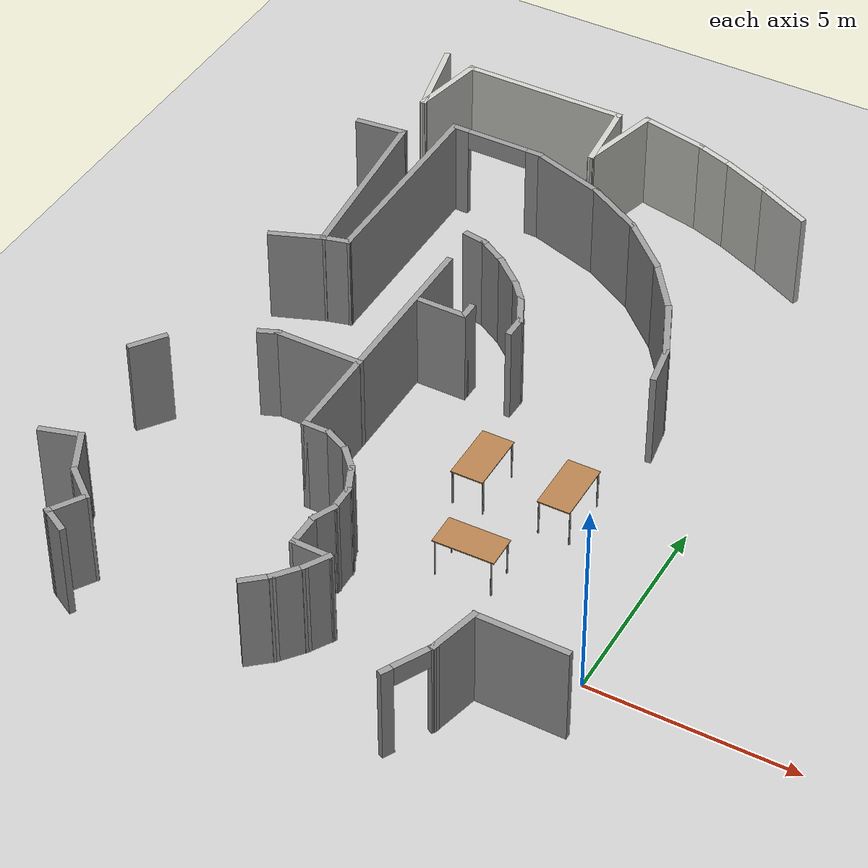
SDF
<sdf version="1.7">
 <world name="default">
  <model name="ground_plane">
   <static>1</static>
   <link name="link">
    <collision name="collision">
     <geometry><plane><normal>0 0 1</normal><size>100 100</size></plane></geometry>
     <surface>
      <contact><collide_bitmask>65535</collide_bitmask></contact>
      <friction><ode><mu>100</mu><mu2>50</mu2></ode></friction>
     </surface>
    </collision>
    <visual name="visual">
     <cast_shadows>0</cast_shadows>
     <geometry><plane><normal>0 0 1</normal><size>100 100</size></plane></geometry>
     <material>
      <script><uri>file://media/materials/scripts/gazebo.material</uri><name>Gazebo/Grey</name></script>
     </material>
    </visual>
   </link>
  </model>
  <model name="model">
   <pose>-4.1341 -0.05921 0 0 -0 0</pose>
   <link name="Wall_108">
    <collision name="Wall_108_Collision">
     <geometry><box><size>2.19881 0.15 2.5</size></box></geometry>
     <pose>0 0 1.25 0 -0 0</pose>
    </collision>
    <visual name="Wall_108_Visual">
     <pose>0 0 1.25 0 -0 0</pose>
     <geometry><box><size>2.19881 0.15 2.5</size></box></geometry>
     <material>
      <script><uri>file://media/materials/scripts/gazebo.material</uri><name>Gazebo/CeilingTiled</name></script>
      <ambient>0.964706 1 0.972549 1</ambient>
     </material>
     <meta><layer>0</layer></meta>
    </visual>
    <pose>-7.32602 14.2769 0 0 -0 -1.34372</pose>
   </link>
   <link name="Wall_109">
    <collision name="Wall_109_Collision">
     <geometry><box><size>1.99778 0.15 2.5</size></box></geometry>
     <pose>0 0 1.25 0 -0 0</pose>
    </collision>
    <visual name="Wall_109_Visual">
     <pose>0 0 1.25 0 -0 0</pose>
     <geometry><box><size>1.99778 0.15 2.5</size></box></geometry>
     <material>
      <script><uri>file://media/materials/scripts/gazebo.material</uri><name>Gazebo/CeilingTiled</name></script>
      <ambient>0.964706 1 0.972549 1</ambient>
     </material>
     <meta><layer>0</layer></meta>
    </visual>
    <pose>-6.92148 14.1861 0 0 -0 1.38143</pose>
   </link>
   <link name="Wall_111">
    <collision name="Wall_111_Collision">
     <geometry><box><size>4.25 0.15 2.5</size></box></geometry>
     <pose>0 0 1.25 0 -0 0</pose>
    </collision>
    <visual name="Wall_111_Visual">
     <pose>0 0 1.25 0 -0 0</pose>
     <geometry><box><size>4.25 0.15 2.5</size></box></geometry>
     <material>
      <script><uri>file://media/materials/scripts/gazebo.material</uri><name>Gazebo/CeilingTiled</name></script>
      <ambient>0.964706 1 0.972549 1</ambient>
     </material>
     <meta><layer>0</layer></meta>
    </visual>
    <pose>-4.69757 15.0935 0 0 -0 0</pose>
   </link>
   <link name="Wall_112">
    <collision name="Wall_112_Collision">
     <geometry><box><size>1.93197 0.15 2.5</size></box></geometry>
     <pose>0 0 1.25 0 -0 0</pose>
    </collision>
    <visual name="Wall_112_Visual">
     <pose>0 0 1.25 0 -0 0</pose>
     <geometry><box><size>1.93197 0.15 2.5</size></box></geometry>
     <material>
      <script><uri>file://media/materials/scripts/gazebo.material</uri><name>Gazebo/CeilingTiled</name></script>
      <ambient>0.964706 1 0.972549 1</ambient>
     </material>
     <meta><layer>0</layer></meta>
    </visual>
    <pose>-2.56312 14.2065 0 0 -0 -1.47587</pose>
   </link>
   <link name="Wall_113">
    <collision name="Wall_113_Collision">
     <geometry><box><size>2.16942 0.15 2.5</size></box></geometry>
     <pose>0 0 1.25 0 -0 0</pose>
    </collision>
    <visual name="Wall_113_Visual">
     <pose>0 0 1.25 0 -0 0</pose>
     <geometry><box><size>2.16942 0.15 2.5</size></box></geometry>
     <material>
      <script><uri>file://media/materials/scripts/gazebo.material</uri><name>Gazebo/CeilingTiled</name></script>
      <ambient>0.964706 1 0.972549 1</ambient>
     </material>
     <meta><layer>0</layer></meta>
    </visual>
    <pose>-2.22567 14.2971 0 0 -0 1.31753</pose>
   </link>
   <link name="Wall_119">
    <collision name="Wall_119_Collision">
     <geometry><box><size>1.52296 0.15 2.5</size></box></geometry>
     <pose>0 0 1.25 0 -0 0</pose>
    </collision>
    <visual name="Wall_119_Visual">
     <pose>0 0 1.25 0 -0 0</pose>
     <geometry><box><size>1.52296 0.15 2.5</size></box></geometry>
     <material>
      <script><uri>file://media/materials/scripts/gazebo.material</uri><name>Gazebo/CeilingTiled</name></script>
      <ambient>0.964706 1 0.972549 1</ambient>
     </material>
     <meta><layer>0</layer></meta>
    </visual>
    <pose>2.30059 13.8514 0 0 -0 2.68533</pose>
   </link>
   <link name="Wall_120">
    <collision name="Wall_120_Collision">
     <geometry><box><size>1.38613 0.15 2.5</size></box></geometry>
     <pose>0 0 1.25 0 -0 0</pose>
    </collision>
    <visual name="Wall_120_Visual">
     <pose>0 0 1.25 0 -0 0</pose>
     <geometry><box><size>1.38613 0.15 2.5</size></box></geometry>
     <material>
      <script><uri>file://media/materials/scripts/gazebo.material</uri><name>Gazebo/CeilingTiled</name></script>
      <ambient>0.964706 1 0.972549 1</ambient>
     </material>
     <meta><layer>0</layer></meta>
    </visual>
    <pose>1.11722 14.3996 0 0 -0 2.73269</pose>
   </link>
   <link name="Wall_121">
    <collision name="Wall_121_Collision">
     <geometry><box><size>1.10172 0.15 2.5</size></box></geometry>
     <pose>0 0 1.25 0 -0 0</pose>
    </collision>
    <visual name="Wall_121_Visual">
     <pose>0 0 1.25 0 -0 0</pose>
     <geometry><box><size>1.10172 0.15 2.5</size></box></geometry>
     <material>
      <script><uri>file://media/materials/scripts/gazebo.material</uri><name>Gazebo/CeilingTiled</name></script>
      <ambient>0.964706 1 0.972549 1</ambient>
     </material>
     <meta><layer>0</layer></meta>
    </visual>
    <pose>0.100208 14.8003 0 0 -0 2.80979</pose>
   </link>
   <link name="Wall_122">
    <collision name="Wall_122_Collision">
     <geometry><box><size>1.79614 0.15 2.5</size></box></geometry>
     <pose>0 0 1.25 0 -0 0</pose>
    </collision>
    <visual name="Wall_122_Visual">
     <pose>0 0 1.25 0 -0 0</pose>
     <geometry><box><size>1.79614 0.15 2.5</size></box></geometry>
     <material>
      <script><uri>file://media/materials/scripts/gazebo.material</uri><name>Gazebo/CeilingTiled</name></script>
      <ambient>0.964706 1 0.972549 1</ambient>
     </material>
     <meta><layer>0</layer></meta>
    </visual>
    <pose>-1.15499 15.1255 0 0 -0 2.93339</pose>
   </link>
   <link name="Wall_182">
    <collision name="Wall_182_Collision">
     <geometry><box><size>1.35009 0.15 2.5</size></box></geometry>
     <pose>0 0 1.25 0 -0 0</pose>
    </collision>
    <visual name="Wall_182_Visual">
     <pose>0 0 1.25 0 -0 0</pose>
     <geometry><box><size>1.35009 0.15 2.5</size></box></geometry>
     <material>
      <script><uri>file://media/materials/scripts/gazebo.material</uri><name>Gazebo/Grey</name></script>
      <ambient>1 1 1 1</ambient>
     </material>
     <meta><layer>0</layer></meta>
    </visual>
    <pose>2.18096 -1.91168 0 0 -0 -1.80764</pose>
   </link>
   <link name="Wall_183">
    <pose>1.75857 -3.03804 0 0 -0 -2.04915</pose>
    <visual name="Wall_183_Visual_0">
     <pose>-0.599077 0 1.25 0 -0 0</pose>
     <geometry><box><size>0.175306 0.15 2.5</size></box></geometry>
     <material>
      <script><uri>file://media/materials/scripts/gazebo.material</uri><name>Gazebo/Grey</name></script>
      <ambient>1 1 1 1</ambient>
     </material>
     <meta><layer>0</layer></meta>
    </visual>
    <collision name="Wall_183_Collision_0">
     <geometry><box><size>0.175306 0.15 2.5</size></box></geometry>
     <pose>-0.599077 0 1.25 0 -0 0</pose>
    </collision>
    <visual name="Wall_183_Visual_1">
     <pose>0.537653 0 1.25 0 -0 0</pose>
     <geometry><box><size>0.298155 0.15 2.5</size></box></geometry>
     <material>
      <script><uri>file://media/materials/scripts/gazebo.material</uri><name>Gazebo/Grey</name></script>
      <ambient>1 1 1 1</ambient>
     </material>
     <meta><layer>0</layer></meta>
    </visual>
    <collision name="Wall_183_Collision_1">
     <geometry><box><size>0.298155 0.15 2.5</size></box></geometry>
     <pose>0.537653 0 1.25 0 -0 0</pose>
    </collision>
    <visual name="Wall_183_Visual_2">
     <pose>-0.061425 0 2.25 0 -0 0</pose>
     <geometry><box><size>0.9 0.15 0.5</size></box></geometry>
     <material>
      <script><uri>file://media/materials/scripts/gazebo.material</uri><name>Gazebo/Grey</name></script>
      <ambient>1 1 1 1</ambient>
     </material>
     <meta><layer>0</layer></meta>
    </visual>
    <collision name="Wall_183_Collision_2">
     <geometry><box><size>0.9 0.15 0.5</size></box></geometry>
     <pose>-0.061425 0 2.25 0 -0 0</pose>
    </collision>
   </link>
   <link name="Wall_206">
    <collision name="Wall_206_Collision">
     <geometry><box><size>2.27583 0.15 2.5</size></box></geometry>
     <pose>0 0 1.25 0 -0 0</pose>
    </collision>
    <visual name="Wall_206_Visual">
     <pose>0 0 1.25 0 -0 0</pose>
     <geometry><box><size>2.27583 0.15 2.5</size></box></geometry>
     <material>
      <script><uri>file://media/materials/scripts/gazebo.material</uri><name>Gazebo/Grey</name></script>
      <ambient>1 1 1 1</ambient>
     </material>
     <meta><layer>0</layer></meta>
    </visual>
    <pose>3.38467 -1.33441 0 0 -0 -0.005672</pose>
   </link>
   <link name="Wall_269">
    <collision name="Wall_269_Collision">
     <geometry><box><size>1.31082 0.15 2.5</size></box></geometry>
     <pose>0 0 1.25 0 -0 0</pose>
    </collision>
    <visual name="Wall_269_Visual">
     <pose>0 0 1.25 0 -0 0</pose>
     <geometry><box><size>1.31082 0.15 2.5</size></box></geometry>
     <material>
      <script><uri>file://media/materials/scripts/gazebo.material</uri><name>Gazebo/Grey</name></script>
      <ambient>1 1 1 1</ambient>
     </material>
     <meta><layer>0</layer></meta>
    </visual>
    <pose>-7.5038 11.8897 0 0 -0 0.105666</pose>
   </link>
   <link name="Wall_270">
    <collision name="Wall_270_Collision">
     <geometry><box><size>4.61065 0.15 2.5</size></box></geometry>
     <pose>0 0 1.25 0 -0 0</pose>
    </collision>
    <visual name="Wall_270_Visual">
     <pose>0 0 1.25 0 -0 0</pose>
     <geometry><box><size>4.61065 0.15 2.5</size></box></geometry>
     <material>
      <script><uri>file://media/materials/scripts/gazebo.material</uri><name>Gazebo/Grey</name></script>
      <ambient>1 1 1 1</ambient>
     </material>
     <meta><layer>0</layer></meta>
    </visual>
    <pose>-6.7255 9.72973 0 0 -0 -1.48049</pose>
   </link>
   <link name="Wall_271">
    <collision name="Wall_271_Collision">
     <geometry><box><size>1.39068 0.15 2.5</size></box></geometry>
     <pose>0 0 1.25 0 -0 0</pose>
    </collision>
    <visual name="Wall_271_Visual">
     <pose>0 0 1.25 0 -0 0</pose>
     <geometry><box><size>1.39068 0.15 2.5</size></box></geometry>
     <material>
      <script><uri>file://media/materials/scripts/gazebo.material</uri><name>Gazebo/Grey</name></script>
      <ambient>1 1 1 1</ambient>
     </material>
     <meta><layer>0</layer></meta>
    </visual>
    <pose>-7.10153 7.28112 0 0 -0 -2.76632</pose>
   </link>
   <link name="Wall_273">
    <collision name="Wall_273_Collision">
     <geometry><box><size>0.75 0.15 2.5</size></box></geometry>
     <pose>0 0 1.25 0 -0 0</pose>
    </collision>
    <visual name="Wall_273_Visual">
     <pose>0 0 1.25 0 -0 0</pose>
     <geometry><box><size>0.75 0.15 2.5</size></box></geometry>
     <material>
      <script><uri>file://media/materials/scripts/gazebo.material</uri><name>Gazebo/Grey</name></script>
      <ambient>1 1 1 1</ambient>
     </material>
     <meta><layer>0</layer></meta>
    </visual>
    <pose>-6.23458 7.58613 0 0 -0 0.261799</pose>
   </link>
   <link name="Wall_275">
    <collision name="Wall_275_Collision">
     <geometry><box><size>5.25 0.15 2.5</size></box></geometry>
     <pose>0 0 1.25 0 -0 0</pose>
    </collision>
    <visual name="Wall_275_Visual">
     <pose>0 0 1.25 0 -0 0</pose>
     <geometry><box><size>5.25 0.15 2.5</size></box></geometry>
     <material>
      <script><uri>file://media/materials/scripts/gazebo.material</uri><name>Gazebo/Grey</name></script>
      <ambient>1 1 1 1</ambient>
     </material>
     <meta><layer>0</layer></meta>
    </visual>
    <pose>-5.9448 10.2138 0 0 -0 1.5708</pose>
   </link>
   <link name="Wall_276">
    <pose>-4.7698 12.7638 0 0 -0 0</pose>
    <visual name="Wall_276_Visual_0">
     <pose>-1.00458 0 1.25 0 -0 0</pose>
     <geometry><box><size>0.490836 0.15 2.5</size></box></geometry>
     <material>
      <script><uri>file://media/materials/scripts/gazebo.material</uri><name>Gazebo/Grey</name></script>
      <ambient>1 1 1 1</ambient>
     </material>
     <meta><layer>0</layer></meta>
    </visual>
    <collision name="Wall_276_Collision_0">
     <geometry><box><size>0.490836 0.15 2.5</size></box></geometry>
     <pose>-1.00458 0 1.25 0 -0 0</pose>
    </collision>
    <visual name="Wall_276_Visual_1">
     <pose>1.03647 0 1.25 0 -0 0</pose>
     <geometry><box><size>0.427052 0.15 2.5</size></box></geometry>
     <material>
      <script><uri>file://media/materials/scripts/gazebo.material</uri><name>Gazebo/Grey</name></script>
      <ambient>1 1 1 1</ambient>
     </material>
     <meta><layer>0</layer></meta>
    </visual>
    <collision name="Wall_276_Collision_1">
     <geometry><box><size>0.427052 0.15 2.5</size></box></geometry>
     <pose>1.03647 0 1.25 0 -0 0</pose>
    </collision>
    <visual name="Wall_276_Visual_2">
     <pose>0.031892 0 2.25 0 -0 0</pose>
     <geometry><box><size>1.58211 0.15 0.5</size></box></geometry>
     <material>
      <script><uri>file://media/materials/scripts/gazebo.material</uri><name>Gazebo/Grey</name></script>
      <ambient>1 1 1 1</ambient>
     </material>
     <meta><layer>0</layer></meta>
    </visual>
    <collision name="Wall_276_Collision_2">
     <geometry><box><size>1.58211 0.15 0.5</size></box></geometry>
     <pose>0.031892 0 2.25 0 -0 0</pose>
    </collision>
   </link>
   <link name="Wall_277">
    <collision name="Wall_277_Collision">
     <geometry><box><size>2.04723 0.15 2.5</size></box></geometry>
     <pose>0 0 1.25 0 -0 0</pose>
    </collision>
    <visual name="Wall_277_Visual">
     <pose>0 0 1.25 0 -0 0</pose>
     <geometry><box><size>2.04723 0.15 2.5</size></box></geometry>
     <material>
      <script><uri>file://media/materials/scripts/gazebo.material</uri><name>Gazebo/Grey</name></script>
      <ambient>1 1 1 1</ambient>
     </material>
     <meta><layer>0</layer></meta>
    </visual>
    <pose>-2.69124 12.4749 0 0 -0 -0.30942</pose>
   </link>
   <link name="Wall_278">
    <collision name="Wall_278_Collision">
     <geometry><box><size>1.68932 0.15 2.5</size></box></geometry>
     <pose>0 0 1.25 0 -0 0</pose>
    </collision>
    <visual name="Wall_278_Visual">
     <pose>0 0 1.25 0 -0 0</pose>
     <geometry><box><size>1.68932 0.15 2.5</size></box></geometry>
     <material>
      <script><uri>file://media/materials/scripts/gazebo.material</uri><name>Gazebo/Grey</name></script>
      <ambient>1 1 1 1</ambient>
     </material>
     <meta><layer>0</layer></meta>
    </visual>
    <pose>-1.11848 11.8058 0 0 -0 -0.516695</pose>
   </link>
   <link name="Wall_279">
    <collision name="Wall_279_Collision">
     <geometry><box><size>1.69995 0.15 2.5</size></box></geometry>
     <pose>0 0 1.25 0 -0 0</pose>
    </collision>
    <visual name="Wall_279_Visual">
     <pose>0 0 1.25 0 -0 0</pose>
     <geometry><box><size>1.69995 0.15 2.5</size></box></geometry>
     <material>
      <script><uri>file://media/materials/scripts/gazebo.material</uri><name>Gazebo/Grey</name></script>
      <ambient>1 1 1 1</ambient>
     </material>
     <meta><layer>0</layer></meta>
    </visual>
    <pose>0.121028 10.9009 0 0 -0 -0.743756</pose>
   </link>
   <link name="Wall_280">
    <collision name="Wall_280_Collision">
     <geometry><box><size>1.67406 0.15 2.5</size></box></geometry>
     <pose>0 0 1.25 0 -0 0</pose>
    </collision>
    <visual name="Wall_280_Visual">
     <pose>0 0 1.25 0 -0 0</pose>
     <geometry><box><size>1.67406 0.15 2.5</size></box></geometry>
     <material>
      <script><uri>file://media/materials/scripts/gazebo.material</uri><name>Gazebo/Grey</name></script>
      <ambient>1 1 1 1</ambient>
     </material>
     <meta><layer>0</layer></meta>
    </visual>
    <pose>1.14001 9.76027 0 0 -0 -0.941266</pose>
   </link>
   <link name="Wall_281">
    <collision name="Wall_281_Collision">
     <geometry><box><size>1.6618 0.15 2.5</size></box></geometry>
     <pose>0 0 1.25 0 -0 0</pose>
    </collision>
    <visual name="Wall_281_Visual">
     <pose>0 0 1.25 0 -0 0</pose>
     <geometry><box><size>1.6618 0.15 2.5</size></box></geometry>
     <material>
      <script><uri>file://media/materials/scripts/gazebo.material</uri><name>Gazebo/Grey</name></script>
      <ambient>1 1 1 1</ambient>
     </material>
     <meta><layer>0</layer></meta>
    </visual>
    <pose>1.89285 8.45231 0 0 -0 -1.15666</pose>
   </link>
   <link name="Wall_282">
    <collision name="Wall_282_Collision">
     <geometry><box><size>1.07511 0.15 2.5</size></box></geometry>
     <pose>0 0 1.25 0 -0 0</pose>
    </collision>
    <visual name="Wall_282_Visual">
     <pose>0 0 1.25 0 -0 0</pose>
     <geometry><box><size>1.07511 0.15 2.5</size></box></geometry>
     <material>
      <script><uri>file://media/materials/scripts/gazebo.material</uri><name>Gazebo/Grey</name></script>
      <ambient>1 1 1 1</ambient>
     </material>
     <meta><layer>0</layer></meta>
    </visual>
    <pose>2.27307 7.30405 0 0 -0 -1.40565</pose>
   </link>
   <link name="Wall_288">
    <collision name="Wall_288_Collision">
     <geometry><box><size>0.6604 0.15 2.5</size></box></geometry>
     <pose>0 0 1.25 0 -0 0</pose>
    </collision>
    <visual name="Wall_288_Visual">
     <pose>0 0 1.25 0 -0 0</pose>
     <geometry><box><size>0.6604 0.15 2.5</size></box></geometry>
     <material>
      <script><uri>file://media/materials/scripts/gazebo.material</uri><name>Gazebo/Grey</name></script>
      <ambient>1 1 1 1</ambient>
     </material>
     <meta><layer>0</layer></meta>
    </visual>
    <pose>-3.42046 9.22796 0 0 -0 -0.168832</pose>
   </link>
   <link name="Wall_289">
    <collision name="Wall_289_Collision">
     <geometry><box><size>0.913863 0.15 2.5</size></box></geometry>
     <pose>0 0 1.25 0 -0 0</pose>
    </collision>
    <visual name="Wall_289_Visual">
     <pose>0 0 1.25 0 -0 0</pose>
     <geometry><box><size>0.913863 0.15 2.5</size></box></geometry>
     <material>
      <script><uri>file://media/materials/scripts/gazebo.material</uri><name>Gazebo/Grey</name></script>
      <ambient>1 1 1 1</ambient>
     </material>
     <meta><layer>0</layer></meta>
    </visual>
    <pose>-2.84013 8.99069 0 0 -0 -0.534001</pose>
   </link>
   <link name="Wall_290">
    <collision name="Wall_290_Collision">
     <geometry><box><size>1.03435 0.15 2.5</size></box></geometry>
     <pose>0 0 1.25 0 -0 0</pose>
    </collision>
    <visual name="Wall_290_Visual">
     <pose>0 0 1.25 0 -0 0</pose>
     <geometry><box><size>1.03435 0.15 2.5</size></box></geometry>
     <material>
      <script><uri>file://media/materials/scripts/gazebo.material</uri><name>Gazebo/Grey</name></script>
      <ambient>1 1 1 1</ambient>
     </material>
     <meta><layer>0</layer></meta>
    </visual>
    <pose>-2.17403 8.51041 0 0 -0 -0.703016</pose>
   </link>
   <link name="Wall_291">
    <collision name="Wall_291_Collision">
     <geometry><box><size>0.701971 0.15 2.5</size></box></geometry>
     <pose>0 0 1.25 0 -0 0</pose>
    </collision>
    <visual name="Wall_291_Visual">
     <pose>0 0 1.25 0 -0 0</pose>
     <geometry><box><size>0.701971 0.15 2.5</size></box></geometry>
     <material>
      <script><uri>file://media/materials/scripts/gazebo.material</uri><name>Gazebo/Grey</name></script>
      <ambient>1 1 1 1</ambient>
     </material>
     <meta><layer>0</layer></meta>
    </visual>
    <pose>-1.65946 8.01299 0 0 -0 -0.873406</pose>
   </link>
   <link name="Wall_292">
    <collision name="Wall_292_Collision">
     <geometry><box><size>0.911978 0.15 2.5</size></box></geometry>
     <pose>0 0 1.25 0 -0 0</pose>
    </collision>
    <visual name="Wall_292_Visual">
     <pose>0 0 1.25 0 -0 0</pose>
     <geometry><box><size>0.911978 0.15 2.5</size></box></geometry>
     <material>
      <script><uri>file://media/materials/scripts/gazebo.material</uri><name>Gazebo/Grey</name></script>
      <ambient>1 1 1 1</ambient>
     </material>
     <meta><layer>0</layer></meta>
    </visual>
    <pose>-1.31069 7.46125 0 0 -0 -1.10379</pose>
   </link>
   <link name="Wall_294">
    <collision name="Wall_294_Collision">
     <geometry><box><size>0.620114 0.15 2.5</size></box></geometry>
     <pose>0 0 1.25 0 -0 0</pose>
    </collision>
    <visual name="Wall_294_Visual">
     <pose>0 0 1.25 0 -0 0</pose>
     <geometry><box><size>0.620114 0.15 2.5</size></box></geometry>
     <material>
      <script><uri>file://media/materials/scripts/gazebo.material</uri><name>Gazebo/Grey</name></script>
      <ambient>1 1 1 1</ambient>
     </material>
     <meta><layer>0</layer></meta>
    </visual>
    <pose>-1.14078 6.886 0 0 -0 -1.57767</pose>
   </link>
   <link name="Wall_297">
    <collision name="Wall_297_Collision">
     <geometry><box><size>6.5 0.15 2.5</size></box></geometry>
     <pose>0 0 1.25 0 -0 0</pose>
    </collision>
    <visual name="Wall_297_Visual">
     <pose>0 0 1.25 0 -0 0</pose>
     <geometry><box><size>6.5 0.15 2.5</size></box></geometry>
     <material>
      <script><uri>file://media/materials/scripts/gazebo.material</uri><name>Gazebo/Grey</name></script>
      <ambient>1 1 1 1</ambient>
     </material>
     <meta><layer>0</layer></meta>
    </visual>
    <pose>-3.58502 5.03881 0 0 -0 -1.5708</pose>
   </link>
   <link name="Wall_299">
    <collision name="Wall_299_Collision">
     <geometry><box><size>1.25 0.15 2.5</size></box></geometry>
     <pose>0 0 1.25 0 -0 0</pose>
    </collision>
    <visual name="Wall_299_Visual">
     <pose>0 0 1.25 0 -0 0</pose>
     <geometry><box><size>1.25 0.15 2.5</size></box></geometry>
     <material>
      <script><uri>file://media/materials/scripts/gazebo.material</uri><name>Gazebo/Grey</name></script>
      <ambient>1 1 1 1</ambient>
     </material>
     <meta><layer>0</layer></meta>
    </visual>
    <pose>-2.87412 6.66507 0 0 -0 0</pose>
   </link>
   <link name="Wall_300">
    <collision name="Wall_300_Collision">
     <geometry><box><size>0.5 0.15 2.5</size></box></geometry>
     <pose>0 0 1.25 0 -0 0</pose>
    </collision>
    <visual name="Wall_300_Visual">
     <pose>0 0 1.25 0 -0 0</pose>
     <geometry><box><size>0.5 0.15 2.5</size></box></geometry>
     <material>
      <script><uri>file://media/materials/scripts/gazebo.material</uri><name>Gazebo/Grey</name></script>
      <ambient>1 1 1 1</ambient>
     </material>
     <meta><layer>0</layer></meta>
    </visual>
    <pose>-2.32412 6.84007 0 0 -0 1.5708</pose>
   </link>
   <link name="Wall_302">
    <collision name="Wall_302_Collision">
     <geometry><box><size>0.75 0.15 2.5</size></box></geometry>
     <pose>0 0 1.25 0 -0 0</pose>
    </collision>
    <visual name="Wall_302_Visual">
     <pose>0 0 1.25 0 -0 0</pose>
     <geometry><box><size>0.75 0.15 2.5</size></box></geometry>
     <material>
      <script><uri>file://media/materials/scripts/gazebo.material</uri><name>Gazebo/Grey</name></script>
      <ambient>1 1 1 1</ambient>
     </material>
     <meta><layer>0</layer></meta>
    </visual>
    <pose>-3.28503 1.86381 0 0 -0 0</pose>
   </link>
   <link name="Wall_303">
    <collision name="Wall_303_Collision">
     <geometry><box><size>0.787599 0.15 2.5</size></box></geometry>
     <pose>0 0 1.25 0 -0 0</pose>
    </collision>
    <visual name="Wall_303_Visual">
     <pose>0 0 1.25 0 -0 0</pose>
     <geometry><box><size>0.787599 0.15 2.5</size></box></geometry>
     <material>
      <script><uri>file://media/materials/scripts/gazebo.material</uri><name>Gazebo/Grey</name></script>
      <ambient>1 1 1 1</ambient>
     </material>
     <meta><layer>0</layer></meta>
    </visual>
    <pose>-2.70044 1.72013 0 0 -0 -0.467553</pose>
   </link>
   <link name="Wall_304">
    <collision name="Wall_304_Collision">
     <geometry><box><size>0.748787 0.15 2.5</size></box></geometry>
     <pose>0 0 1.25 0 -0 0</pose>
    </collision>
    <visual name="Wall_304_Visual">
     <pose>0 0 1.25 0 -0 0</pose>
     <geometry><box><size>0.748787 0.15 2.5</size></box></geometry>
     <material>
      <script><uri>file://media/materials/scripts/gazebo.material</uri><name>Gazebo/Grey</name></script>
      <ambient>1 1 1 1</ambient>
     </material>
     <meta><layer>0</layer></meta>
    </visual>
    <pose>-2.21087 1.35823 0 0 -0 -0.816638</pose>
   </link>
   <link name="Wall_305">
    <collision name="Wall_305_Collision">
     <geometry><box><size>0.818746 0.15 2.5</size></box></geometry>
     <pose>0 0 1.25 0 -0 0</pose>
    </collision>
    <visual name="Wall_305_Visual">
     <pose>0 0 1.25 0 -0 0</pose>
     <geometry><box><size>0.818746 0.15 2.5</size></box></geometry>
     <material>
      <script><uri>file://media/materials/scripts/gazebo.material</uri><name>Gazebo/Grey</name></script>
      <ambient>1 1 1 1</ambient>
     </material>
     <meta><layer>0</layer></meta>
    </visual>
    <pose>-1.86702 0.835843 0 0 -0 -1.14253</pose>
   </link>
   <link name="Wall_306">
    <collision name="Wall_306_Collision">
     <geometry><box><size>0.745272 0.15 2.5</size></box></geometry>
     <pose>0 0 1.25 0 -0 0</pose>
    </collision>
    <visual name="Wall_306_Visual">
     <pose>0 0 1.25 0 -0 0</pose>
     <geometry><box><size>0.745272 0.15 2.5</size></box></geometry>
     <material>
      <script><uri>file://media/materials/scripts/gazebo.material</uri><name>Gazebo/Grey</name></script>
      <ambient>1 1 1 1</ambient>
     </material>
     <meta><layer>0</layer></meta>
    </visual>
    <pose>-1.72154 0.234105 0 0 -0 -1.54858</pose>
   </link>
   <link name="Wall_307">
    <collision name="Wall_307_Collision">
     <geometry><box><size>0.671005 0.15 2.5</size></box></geometry>
     <pose>0 0 1.25 0 -0 0</pose>
    </collision>
    <visual name="Wall_307_Visual">
     <pose>0 0 1.25 0 -0 0</pose>
     <geometry><box><size>0.671005 0.15 2.5</size></box></geometry>
     <material>
      <script><uri>file://media/materials/scripts/gazebo.material</uri><name>Gazebo/Grey</name></script>
      <ambient>1 1 1 1</ambient>
     </material>
     <meta><layer>0</layer></meta>
    </visual>
    <pose>-1.82073 -0.301507 0 0 -0 -1.98902</pose>
   </link>
   <link name="Wall_308">
    <collision name="Wall_308_Collision">
     <geometry><box><size>0.9435 0.15 2.5</size></box></geometry>
     <pose>0 0 1.25 0 -0 0</pose>
    </collision>
    <visual name="Wall_308_Visual">
     <pose>0 0 1.25 0 -0 0</pose>
     <geometry><box><size>0.9435 0.15 2.5</size></box></geometry>
     <material>
      <script><uri>file://media/materials/scripts/gazebo.material</uri><name>Gazebo/Grey</name></script>
      <ambient>1 1 1 1</ambient>
     </material>
     <meta><layer>0</layer></meta>
    </visual>
    <pose>-1.92653 -0.936307 0 0 -0 -1.5708</pose>
   </link>
   <link name="Wall_309">
    <collision name="Wall_309_Collision">
     <geometry><box><size>1.00973 0.15 2.5</size></box></geometry>
     <pose>0 0 1.25 0 -0 0</pose>
    </collision>
    <visual name="Wall_309_Visual">
     <pose>0 0 1.25 0 -0 0</pose>
     <geometry><box><size>1.00973 0.15 2.5</size></box></geometry>
     <material>
      <script><uri>file://media/materials/scripts/gazebo.material</uri><name>Gazebo/Grey</name></script>
      <ambient>1 1 1 1</ambient>
     </material>
     <meta><layer>0</layer></meta>
    </visual>
    <pose>-1.49672 -1.33967 0 0 -0 -0.015383</pose>
   </link>
   <link name="Wall_311">
    <collision name="Wall_311_Collision">
     <geometry><box><size>0.75 0.15 2.5</size></box></geometry>
     <pose>0 0 1.25 0 -0 0</pose>
    </collision>
    <visual name="Wall_311_Visual">
     <pose>0 0 1.25 0 -0 0</pose>
     <geometry><box><size>0.75 0.15 2.5</size></box></geometry>
     <material>
      <script><uri>file://media/materials/scripts/gazebo.material</uri><name>Gazebo/Grey</name></script>
      <ambient>1 1 1 1</ambient>
     </material>
     <meta><layer>0</layer></meta>
    </visual>
    <pose>-1.21691 -1.60609 0 0 -0 -2.0944</pose>
   </link>
   <link name="Wall_312">
    <collision name="Wall_312_Collision">
     <geometry><box><size>0.85304 0.15 2.5</size></box></geometry>
     <pose>0 0 1.25 0 -0 0</pose>
    </collision>
    <visual name="Wall_312_Visual">
     <pose>0 0 1.25 0 -0 0</pose>
     <geometry><box><size>0.85304 0.15 2.5</size></box></geometry>
     <material>
      <script><uri>file://media/materials/scripts/gazebo.material</uri><name>Gazebo/Grey</name></script>
      <ambient>1 1 1 1</ambient>
     </material>
     <meta><layer>0</layer></meta>
    </visual>
    <pose>-1.58538 -2.14128 0 0 -0 -2.24147</pose>
   </link>
   <link name="Wall_313">
    <collision name="Wall_313_Collision">
     <geometry><box><size>0.786149 0.15 2.5</size></box></geometry>
     <pose>0 0 1.25 0 -0 0</pose>
    </collision>
    <visual name="Wall_313_Visual">
     <pose>0 0 1.25 0 -0 0</pose>
     <geometry><box><size>0.786149 0.15 2.5</size></box></geometry>
     <material>
      <script><uri>file://media/materials/scripts/gazebo.material</uri><name>Gazebo/Grey</name></script>
      <ambient>1 1 1 1</ambient>
     </material>
     <meta><layer>0</layer></meta>
    </visual>
    <pose>-2.04536 -2.62366 0 0 -0 -2.43297</pose>
   </link>
   <link name="Wall_320">
    <collision name="Wall_320_Collision">
     <geometry><box><size>0.764202 0.15 2.5</size></box></geometry>
     <pose>0 0 1.25 0 -0 0</pose>
    </collision>
    <visual name="Wall_320_Visual">
     <pose>0 0 1.25 0 -0 0</pose>
     <geometry><box><size>0.764202 0.15 2.5</size></box></geometry>
     <material>
      <script><uri>file://media/materials/scripts/gazebo.material</uri><name>Gazebo/Grey</name></script>
      <ambient>1 1 1 1</ambient>
     </material>
     <meta><layer>0</layer></meta>
    </visual>
    <pose>-6.62424 -3.20314 0 0 -0 2.6363</pose>
   </link>
   <link name="Wall_321">
    <collision name="Wall_321_Collision">
     <geometry><box><size>1.01303 0.15 2.5</size></box></geometry>
     <pose>0 0 1.25 0 -0 0</pose>
    </collision>
    <visual name="Wall_321_Visual">
     <pose>0 0 1.25 0 -0 0</pose>
     <geometry><box><size>1.01303 0.15 2.5</size></box></geometry>
     <material>
      <script><uri>file://media/materials/scripts/gazebo.material</uri><name>Gazebo/Grey</name></script>
      <ambient>1 1 1 1</ambient>
     </material>
     <meta><layer>0</layer></meta>
    </visual>
    <pose>-6.66426 -2.68856 0 0 -0 1.0122</pose>
   </link>
   <link name="Wall_323">
    <collision name="Wall_323_Collision">
     <geometry><box><size>1.02555 0.15 2.5</size></box></geometry>
     <pose>0 0 1.25 0 -0 0</pose>
    </collision>
    <visual name="Wall_323_Visual">
     <pose>0 0 1.25 0 -0 0</pose>
     <geometry><box><size>1.02555 0.15 2.5</size></box></geometry>
     <material>
      <script><uri>file://media/materials/scripts/gazebo.material</uri><name>Gazebo/Grey</name></script>
      <ambient>1 1 1 1</ambient>
     </material>
     <meta><layer>0</layer></meta>
    </visual>
    <pose>-6.77373 -2.04463 0 0 -0 2.45352</pose>
   </link>
   <link name="Wall_324">
    <collision name="Wall_324_Collision">
     <geometry><box><size>1.23235 0.15 2.5</size></box></geometry>
     <pose>0 0 1.25 0 -0 0</pose>
    </collision>
    <visual name="Wall_324_Visual">
     <pose>0 0 1.25 0 -0 0</pose>
     <geometry><box><size>1.23235 0.15 2.5</size></box></geometry>
     <material>
      <script><uri>file://media/materials/scripts/gazebo.material</uri><name>Gazebo/Grey</name></script>
      <ambient>1 1 1 1</ambient>
     </material>
     <meta><layer>0</layer></meta>
    </visual>
    <pose>-7.35656 -1.28391 0 0 -0 2.03991</pose>
   </link>
   <link name="Wall_325">
    <collision name="Wall_325_Collision">
     <geometry><box><size>1.06205 0.15 2.5</size></box></geometry>
     <pose>0 0 1.25 0 -0 0</pose>
    </collision>
    <visual name="Wall_325_Visual">
     <pose>0 0 1.25 0 -0 0</pose>
     <geometry><box><size>1.06205 0.15 2.5</size></box></geometry>
     <material>
      <script><uri>file://media/materials/scripts/gazebo.material</uri><name>Gazebo/Grey</name></script>
      <ambient>1 1 1 1</ambient>
     </material>
     <meta><layer>0</layer></meta>
    </visual>
    <pose>-8.03764 -0.933445 0 0 -0 -2.84736</pose>
   </link>
   <link name="Wall_330">
    <collision name="Wall_330_Collision">
     <geometry><box><size>0.964815 0.15 2.5</size></box></geometry>
     <pose>0 0 1.25 0 -0 0</pose>
    </collision>
    <visual name="Wall_330_Visual">
     <pose>0 0 1.25 0 -0 0</pose>
     <geometry><box><size>0.964815 0.15 2.5</size></box></geometry>
     <material>
      <script><uri>file://media/materials/scripts/gazebo.material</uri><name>Gazebo/Grey</name></script>
      <ambient>1 1 1 1</ambient>
     </material>
     <meta><layer>0</layer></meta>
    </visual>
    <pose>-8.06486 2.46585 0 0 -0 0.946773</pose>
   </link>
   <link name="Wall_332">
    <collision name="Wall_332_Collision">
     <geometry><box><size>0.565063 0.15 2.5</size></box></geometry>
     <pose>0 0 1.25 0 -0 0</pose>
    </collision>
    <visual name="Wall_332_Visual">
     <pose>0 0 1.25 0 -0 0</pose>
     <geometry><box><size>0.565063 0.15 2.5</size></box></geometry>
     <material>
      <script><uri>file://media/materials/scripts/gazebo.material</uri><name>Gazebo/Grey</name></script>
      <ambient>1 1 1 1</ambient>
     </material>
     <meta><layer>0</layer></meta>
    </visual>
    <pose>-5.86289 4.05285 0 0 -0 0.39234</pose>
   </link>
   <link name="Wall_333">
    <collision name="Wall_333_Collision">
     <geometry><box><size>2.23955 0.15 2.5</size></box></geometry>
     <pose>0 0 1.25 0 -0 0</pose>
    </collision>
    <visual name="Wall_333_Visual">
     <pose>0 0 1.25 0 -0 0</pose>
     <geometry><box><size>2.23955 0.15 2.5</size></box></geometry>
     <material>
      <script><uri>file://media/materials/scripts/gazebo.material</uri><name>Gazebo/Grey</name></script>
      <ambient>1 1 1 1</ambient>
     </material>
     <meta><layer>0</layer></meta>
    </visual>
    <pose>-4.62636 4.1322 0 0 -0 0</pose>
   </link>
   <static>1</static>
  </model>
  <model name="table">
   <static>1</static>
   <link name="link">
    <collision name="surface">
     <pose>0 0 1 0 -0 0</pose>
     <geometry><box><size>1.5 0.8 0.03</size></box></geometry>
     <surface><friction><ode><mu>0.6</mu><mu2>0.6</mu2></ode></friction></surface>
    </collision>
    <visual name="visual1">
     <pose>0 0 1 0 -0 0</pose>
     <geometry><box><size>1.5 0.8 0.03</size></box></geometry>
     <material>
      <script><uri>file://media/materials/scripts/gazebo.material</uri><name>Gazebo/Wood</name></script>
     </material>
    </visual>
    <collision name="front_left_leg">
     <pose>0.68 0.38 0.5 0 -0 0</pose>
     <geometry><cylinder><radius>0.02</radius><length>1</length></cylinder></geometry>
    </collision>
    <visual name="front_left_leg">
     <pose>0.68 0.38 0.5 0 -0 0</pose>
     <geometry><cylinder><radius>0.02</radius><length>1</length></cylinder></geometry>
     <material>
      <script><uri>file://media/materials/scripts/gazebo.material</uri><name>Gazebo/Grey</name></script>
     </material>
    </visual>
    <collision name="front_right_leg">
     <pose>0.68 -0.38 0.5 0 -0 0</pose>
     <geometry><cylinder><radius>0.02</radius><length>1</length></cylinder></geometry>
    </collision>
    <visual name="front_right_leg">
     <pose>0.68 -0.38 0.5 0 -0 0</pose>
     <geometry><cylinder><radius>0.02</radius><length>1</length></cylinder></geometry>
     <material>
      <script><uri>file://media/materials/scripts/gazebo.material</uri><name>Gazebo/Grey</name></script>
     </material>
    </visual>
    <collision name="back_right_leg">
     <pose>-0.68 -0.38 0.5 0 -0 0</pose>
     <geometry><cylinder><radius>0.02</radius><length>1</length></cylinder></geometry>
    </collision>
    <visual name="back_right_leg">
     <pose>-0.68 -0.38 0.5 0 -0 0</pose>
     <geometry><cylinder><radius>0.02</radius><length>1</length></cylinder></geometry>
     <material>
      <script><uri>file://media/materials/scripts/gazebo.material</uri><name>Gazebo/Grey</name></script>
     </material>
    </visual>
    <collision name="back_left_leg">
     <pose>-0.68 0.38 0.5 0 -0 0</pose>
     <geometry><cylinder><radius>0.02</radius><length>1</length></cylinder></geometry>
    </collision>
    <visual name="back_left_leg">
     <pose>-0.68 0.38 0.5 0 -0 0</pose>
     <geometry><cylinder><radius>0.02</radius><length>1</length></cylinder></geometry>
     <material>
      <script><uri>file://media/materials/scripts/gazebo.material</uri><name>Gazebo/Grey</name></script>
     </material>
    </visual>
   </link>
   <pose>-4.61062 4.12344 0 0 0 -1.56332</pose>
  </model>
  <model name="table_clone">
   <static>1</static>
   <link name="link">
    <collision name="surface">
     <pose>0 0 1 0 -0 0</pose>
     <geometry><box><size>1.5 0.8 0.03</size></box></geometry>
     <surface><friction><ode><mu>0.6</mu><mu2>0.6</mu2></ode></friction></surface>
    </collision>
    <visual name="visual1">
     <pose>0 0 1 0 -0 0</pose>
     <geometry><box><size>1.5 0.8 0.03</size></box></geometry>
     <material>
      <script><uri>file://media/materials/scripts/gazebo.material</uri><name>Gazebo/Wood</name></script>
     </material>
    </visual>
    <collision name="front_left_leg">
     <pose>0.68 0.38 0.5 0 -0 0</pose>
     <geometry><cylinder><radius>0.02</radius><length>1</length></cylinder></geometry>
    </collision>
    <visual name="front_left_leg">
     <pose>0.68 0.38 0.5 0 -0 0</pose>
     <geometry><cylinder><radius>0.02</radius><length>1</length></cylinder></geometry>
     <material>
      <script><uri>file://media/materials/scripts/gazebo.material</uri><name>Gazebo/Grey</name></script>
     </material>
    </visual>
    <collision name="front_right_leg">
     <pose>0.68 -0.38 0.5 0 -0 0</pose>
     <geometry><cylinder><radius>0.02</radius><length>1</length></cylinder></geometry>
    </collision>
    <visual name="front_right_leg">
     <pose>0.68 -0.38 0.5 0 -0 0</pose>
     <geometry><cylinder><radius>0.02</radius><length>1</length></cylinder></geometry>
     <material>
      <script><uri>file://media/materials/scripts/gazebo.material</uri><name>Gazebo/Grey</name></script>
     </material>
    </visual>
    <collision name="back_right_leg">
     <pose>-0.68 -0.38 0.5 0 -0 0</pose>
     <geometry><cylinder><radius>0.02</radius><length>1</length></cylinder></geometry>
    </collision>
    <visual name="back_right_leg">
     <pose>-0.68 -0.38 0.5 0 -0 0</pose>
     <geometry><cylinder><radius>0.02</radius><length>1</length></cylinder></geometry>
     <material>
      <script><uri>file://media/materials/scripts/gazebo.material</uri><name>Gazebo/Grey</name></script>
     </material>
    </visual>
    <collision name="back_left_leg">
     <pose>-0.68 0.38 0.5 0 -0 0</pose>
     <geometry><cylinder><radius>0.02</radius><length>1</length></cylinder></geometry>
    </collision>
    <visual name="back_left_leg">
     <pose>-0.68 0.38 0.5 0 -0 0</pose>
     <geometry><cylinder><radius>0.02</radius><length>1</length></cylinder></geometry>
     <material>
      <script><uri>file://media/materials/scripts/gazebo.material</uri><name>Gazebo/Grey</name></script>
     </material>
    </visual>
   </link>
   <pose>-2.51359 4.21252 0 0 0 -1.56332</pose>
  </model>
  <model name="table_clone_clone">
   <static>1</static>
   <link name="link">
    <collision name="surface">
     <pose>0 0 1 0 -0 0</pose>
     <geometry><box><size>1.5 0.8 0.03</size></box></geometry>
     <surface><friction><ode><mu>0.6</mu><mu2>0.6</mu2></ode></friction></surface>
    </collision>
    <visual name="visual1">
     <pose>0 0 1 0 -0 0</pose>
     <geometry><box><size>1.5 0.8 0.03</size></box></geometry>
     <material>
      <script><uri>file://media/materials/scripts/gazebo.material</uri><name>Gazebo/Wood</name></script>
     </material>
    </visual>
    <collision name="front_left_leg">
     <pose>0.68 0.38 0.5 0 -0 0</pose>
     <geometry><cylinder><radius>0.02</radius><length>1</length></cylinder></geometry>
    </collision>
    <visual name="front_left_leg">
     <pose>0.68 0.38 0.5 0 -0 0</pose>
     <geometry><cylinder><radius>0.02</radius><length>1</length></cylinder></geometry>
     <material>
      <script><uri>file://media/materials/scripts/gazebo.material</uri><name>Gazebo/Grey</name></script>
     </material>
    </visual>
    <collision name="front_right_leg">
     <pose>0.68 -0.38 0.5 0 -0 0</pose>
     <geometry><cylinder><radius>0.02</radius><length>1</length></cylinder></geometry>
    </collision>
    <visual name="front_right_leg">
     <pose>0.68 -0.38 0.5 0 -0 0</pose>
     <geometry><cylinder><radius>0.02</radius><length>1</length></cylinder></geometry>
     <material>
      <script><uri>file://media/materials/scripts/gazebo.material</uri><name>Gazebo/Grey</name></script>
     </material>
    </visual>
    <collision name="back_right_leg">
     <pose>-0.68 -0.38 0.5 0 -0 0</pose>
     <geometry><cylinder><radius>0.02</radius><length>1</length></cylinder></geometry>
    </collision>
    <visual name="back_right_leg">
     <pose>-0.68 -0.38 0.5 0 -0 0</pose>
     <geometry><cylinder><radius>0.02</radius><length>1</length></cylinder></geometry>
     <material>
      <script><uri>file://media/materials/scripts/gazebo.material</uri><name>Gazebo/Grey</name></script>
     </material>
    </visual>
    <collision name="back_left_leg">
     <pose>-0.68 0.38 0.5 0 -0 0</pose>
     <geometry><cylinder><radius>0.02</radius><length>1</length></cylinder></geometry>
    </collision>
    <visual name="back_left_leg">
     <pose>-0.68 0.38 0.5 0 -0 0</pose>
     <geometry><cylinder><radius>0.02</radius><length>1</length></cylinder></geometry>
     <material>
      <script><uri>file://media/materials/scripts/gazebo.material</uri><name>Gazebo/Grey</name></script>
     </material>
    </visual>
   </link>
   <pose>-3.57392 1.7175 0 0 -0 0.021122</pose>
  </model>
 </world>
</sdf>
